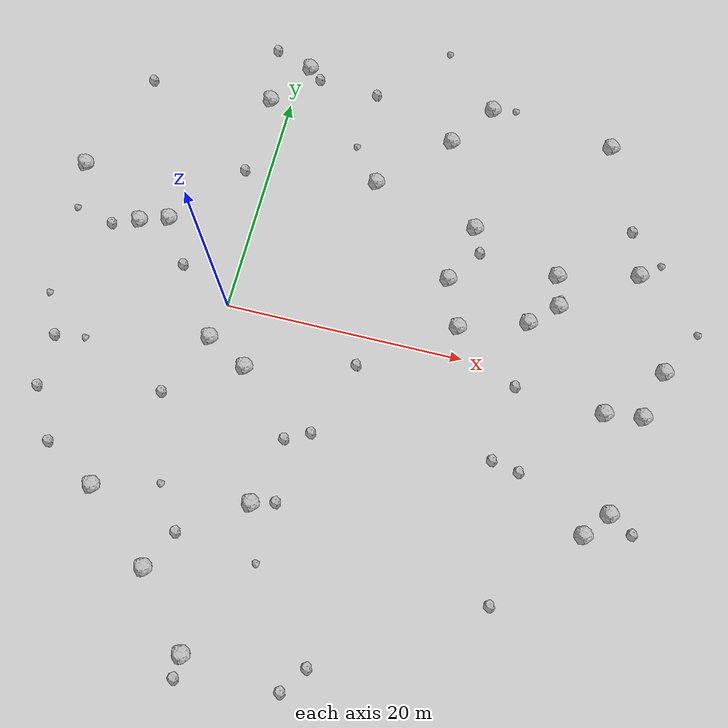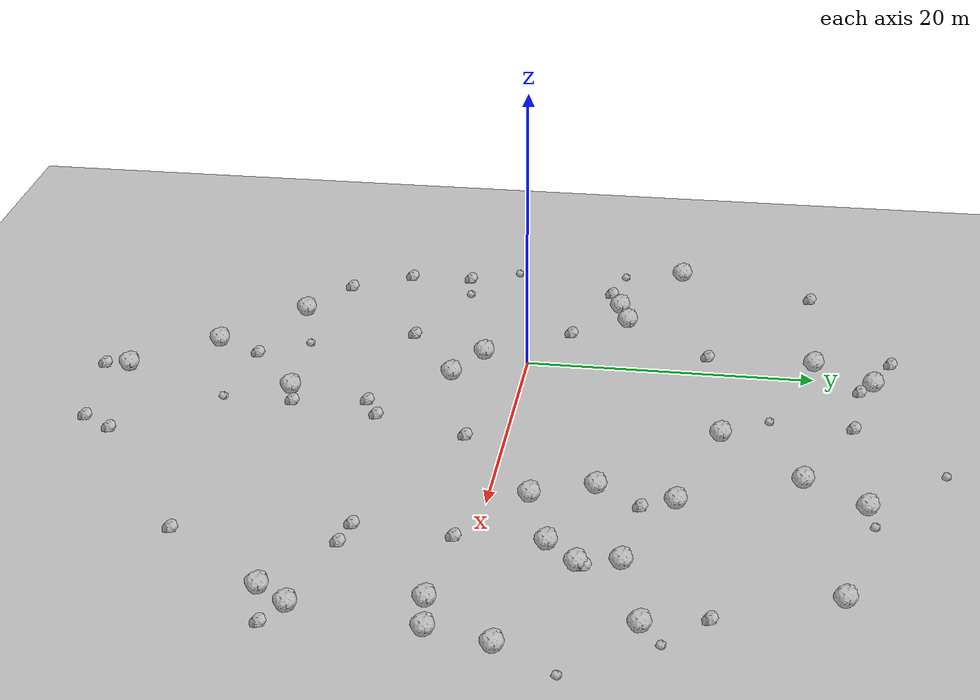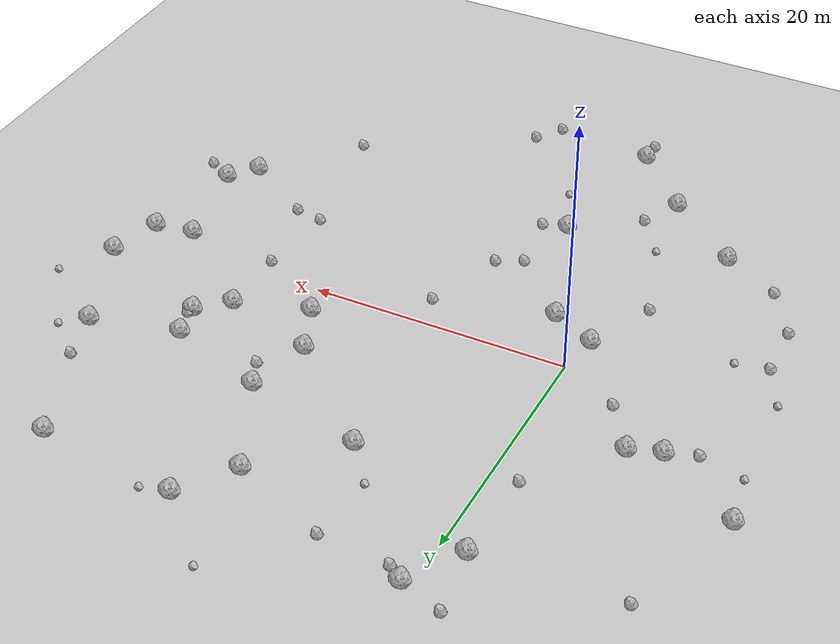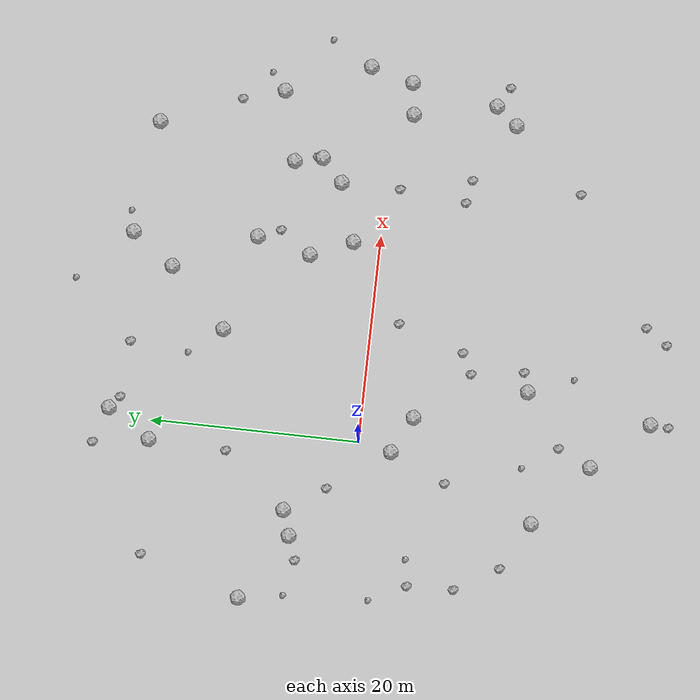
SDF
<sdf version="1.6">
 <world name="default">
  <include><uri>model://custom_ground</uri></include>
  <include><uri>model://sun</uri></include>
  <model name="rock1_0_0">
   <include><uri>model://rock1</uri><pose>-9.551726560826815 5.658364170545845 0.5 0 0 0</pose></include>
  </model>
  <model name="rock1_0_1">
   <include><uri>model://rock1</uri><pose>6.525494328169753 -15.528129669238202 0.5 0 0 0</pose></include>
  </model>
  <model name="rock1_0_2">
   <include><uri>model://rock1</uri><pose>14.978238811556729 19.59930031675478 0.5 0 0 0</pose></include>
  </model>
  <model name="rock1_0_3">
   <include><uri>model://rock1</uri><pose>35.173844090567314 -1.4398469227814665 0.5 0 0 0</pose></include>
  </model>
  <model name="rock1_0_4">
   <include><uri>model://rock1</uri><pose>17.903144709683914 23.66732824782293 0.5 0 0 0</pose></include>
  </model>
  <model name="rock1_0_5">
   <include><uri>model://rock1</uri><pose>4.657105373161706 -27.478541318918516 0.5 0 0 0</pose></include>
  </model>
  <model name="rock1_0_6">
   <include><uri>model://rock1</uri><pose>24.757668048360884 4.340254648814792 0.5 0 0 0</pose></include>
  </model>
  <model name="rock1_0_7">
   <include><uri>model://rock1</uri><pose>-5.961700583877445 -17.111554562166315 0.5 0 0 0</pose></include>
  </model>
  <model name="rock1_0_8">
   <include><uri>model://rock1</uri><pose>32.09557068831104 -1.8662773400095176 0.5 0 0 0</pose></include>
  </model>
  <model name="rock1_0_9">
   <include><uri>model://rock1</uri><pose>28.84026890550205 22.363350226917788 0.5 0 0 0</pose></include>
  </model>
  <model name="rock1_0_10">
   <include><uri>model://rock1</uri><pose>32.05394939986874 -11.825418559368089 0.5 0 0 0</pose></include>
  </model>
  <model name="rock1_0_11">
   <include><uri>model://rock1</uri><pose>18.7097731202906 11.778567993993775 0.5 0 0 0</pose></include>
  </model>
  <model name="rock1_0_12">
   <include><uri>model://rock1</uri><pose>-15.896420309960842 9.810015975268527 0.5 0 0 0</pose></include>
  </model>
  <model name="rock1_0_13">
   <include><uri>model://rock1</uri><pose>9.434874660676662 14.064862368814445 0.5 0 0 0</pose></include>
  </model>
  <model name="rock1_0_14">
   <include><uri>model://rock1</uri><pose>-0.02960096387186084 -22.165018221034458 0.5 0 0 0</pose></include>
  </model>
  <model name="rock1_0_15">
   <include><uri>model://rock1</uri><pose>33.09887189784094 10.725748791118697 0.5 0 0 0</pose></include>
  </model>
  <model name="rock1_0_16">
   <include><uri>model://rock1</uri><pose>2.933327695562589 -4.941073363136727 0.5 0 0 0</pose></include>
  </model>
  <model name="rock1_0_17">
   <include><uri>model://rock1</uri><pose>26.369798298200188 9.057177148235965 0.5 0 0 0</pose></include>
  </model>
  <model name="rock1_0_18">
   <include><uri>model://rock1</uri><pose>19.15200294798973 2.5899990601920706 0.5 0 0 0</pose></include>
  </model>
  <model name="rock1_0_19">
   <include><uri>model://rock1</uri><pose>26.951856075820388 6.385992832944176 0.5 0 0 0</pose></include>
  </model>
  <model name="rock1_0_20">
   <include><uri>model://rock1</uri><pose>0.7873363466603003 24.07229664766971 0.5 0 0 0</pose></include>
  </model>
  <model name="rock1_0_21">
   <include><uri>model://rock1</uri><pose>-0.5725116038871612 -3.1469100808864177 0.5 0 0 0</pose></include>
  </model>
  <model name="rock1_0_22">
   <include><uri>model://rock1</uri><pose>36.31542387867218 2.6972559976155424 0.5 0 0 0</pose></include>
  </model>
  <model name="rock1_0_23">
   <include><uri>model://rock1</uri><pose>-7.152741680136149 6.438192470695547 0.5 0 0 0</pose></include>
  </model>
  <model name="rock1_0_24">
   <include><uri>model://rock1</uri><pose>33.75240878094792 -9.752561160526604 0.5 0 0 0</pose></include>
  </model>
  <model name="rock1_0_25">
   <include><uri>model://rock1</uri><pose>-1.8262302441712137 19.959202153039342 0.5 0 0 0</pose></include>
  </model>
  <model name="rock1_0_26">
   <include><uri>model://rock1</uri><pose>17.466065402417648 6.623176181134468 0.5 0 0 0</pose></include>
  </model>
  <model name="rock2_0_0">
   <include><uri>model://rock2</uri><pose>-2.1076209854782633 12.545652631384016 0.3 0 0 0</pose></include>
  </model>
  <model name="rock2_0_1">
   <include><uri>model://rock2</uri><pose>-12.767681102007112 19.478969545818238 0.3 0 0 0</pose></include>
  </model>
  <model name="rock2_0_2">
   <include><uri>model://rock2</uri><pose>4.556087843798082 -29.213374631738358 0.3 0 0 0</pose></include>
  </model>
  <model name="rock2_0_3">
   <include><uri>model://rock2</uri><pose>7.3598117831130345 22.791673015682278 0.3 0 0 0</pose></include>
  </model>
  <model name="rock2_0_4">
   <include><uri>model://rock2</uri><pose>26.319278064421226 -8.161043997304347 0.3 0 0 0</pose></include>
  </model>
  <model name="rock2_0_5">
   <include><uri>model://rock2</uri><pose>9.611140949476141 -8.977769120030633 0.3 0 0 0</pose></include>
  </model>
  <model name="rock2_0_6">
   <include><uri>model://rock2</uri><pose>26.07126488731342 -18.678094918892505 0.3 0 0 0</pose></include>
  </model>
  <model name="rock2_0_7">
   <include><uri>model://rock2</uri><pose>-12.988371466282594 -10.424023336573804 0.3 0 0 0</pose></include>
  </model>
  <model name="rock2_0_8">
   <include><uri>model://rock2</uri><pose>8.370936616293509 -14.998560017986923 0.3 0 0 0</pose></include>
  </model>
  <model name="rock2_0_9">
   <include><uri>model://rock2</uri><pose>27.040090203728525 6.8873130443278185 0.3 0 0 0</pose></include>
  </model>
  <model name="rock2_0_10">
   <include><uri>model://rock2</uri><pose>24.083539014647627 -7.7410710448314966 0.3 0 0 0</pose></include>
  </model>
  <model name="rock2_0_11">
   <include><uri>model://rock2</uri><pose>11.75579595320636 -2.601002839735248 0.3 0 0 0</pose></include>
  </model>
  <model name="rock2_0_12">
   <include><uri>model://rock2</uri><pose>13.886342731963971 -26.20481341159381 0.3 0 0 0</pose></include>
  </model>
  <model name="rock2_0_13">
   <include><uri>model://rock2</uri><pose>-13.11695526625639 -5.973105190903468 0.3 0 0 0</pose></include>
  </model>
  <model name="rock2_0_14">
   <include><uri>model://rock2</uri><pose>31.917226511826918 14.69716209436087 0.3 0 0 0</pose></include>
  </model>
  <model name="rock2_0_15">
   <include><uri>model://rock2</uri><pose>-10.525159330953382 -14.584941271871251 0.3 0 0 0</pose></include>
  </model>
  <model name="rock2_0_16">
   <include><uri>model://rock2</uri><pose>-4.683761400695573 2.6118200227654853 0.3 0 0 0</pose></include>
  </model>
  <model name="rock2_0_17">
   <include><uri>model://rock2</uri><pose>12.411701760987732 -28.290305317013708 0.3 0 0 0</pose></include>
  </model>
  <model name="rock2_0_18">
   <include><uri>model://rock2</uri><pose>-2.6362068851392024 25.287541088376116 0.3 0 0 0</pose></include>
  </model>
  <model name="rock2_0_19">
   <include><uri>model://rock2</uri><pose>19.571530732457212 9.632664131395835 0.3 0 0 0</pose></include>
  </model>
  <model name="rock2_0_20">
   <include><uri>model://rock2</uri><pose>7.658739192554798 -9.954902807704599 0.3 0 0 0</pose></include>
  </model>
  <model name="rock2_0_21">
   <include><uri>model://rock2</uri><pose>-11.826903979004372 4.853959233063065 0.3 0 0 0</pose></include>
  </model>
  <model name="rock2_0_22">
   <include><uri>model://rock2</uri><pose>1.4740446867495223 -19.00852634217297 0.3 0 0 0</pose></include>
  </model>
  <model name="rock2_0_23">
   <include><uri>model://rock2</uri><pose>1.9414424661179481 23.159034099023152 0.3 0 0 0</pose></include>
  </model>
  <model name="rock2_0_24">
   <include><uri>model://rock2</uri><pose>24.72394510151996 -1.318942919640996 0.3 0 0 0</pose></include>
  </model>
  <model name="rock2_0_25">
   <include><uri>model://rock2</uri><pose>-3.033040224024621 -8.527124351589567 0.3 0 0 0</pose></include>
  </model>
  <model name="rock2_0_26">
   <include><uri>model://rock2</uri><pose>35.697816363103854 -10.879739896210367 0.3 0 0 0</pose></include>
  </model>
  <model name="rock3_0_0">
   <include><uri>model://rock3</uri><pose>6.857569436498586 17.186086094452627 0.2 0 0 0</pose></include>
  </model>
  <model name="rock3_0_1">
   <include><uri>model://rock3</uri><pose>-0.8072237528325452 -15.710096379560248 0.2 0 0 0</pose></include>
  </model>
  <model name="rock3_0_2">
   <include><uri>model://rock3</uri><pose>-15.261874115451937 5.598008568532457 0.2 0 0 0</pose></include>
  </model>
  <model name="rock3_0_3">
   <include><uri>model://rock3</uri><pose>19.930850184135203 24.109246118672388 0.2 0 0 0</pose></include>
  </model>
  <model name="rock3_0_4">
   <include><uri>model://rock3</uri><pose>38.56439440033748 6.610501055208907 0.2 0 0 0</pose></include>
  </model>
  <model name="rock3_0_5">
   <include><uri>model://rock3</uri><pose>8.139352126609097 -19.862201073627894 0.2 0 0 0</pose></include>
  </model>
  <model name="rock3_0_6">
   <include><uri>model://rock3</uri><pose>-14.862051675257932 -2.4933888170265988 0.2 0 0 0</pose></include>
  </model>
  <model name="rock3_0_7">
   <include><uri>model://rock3</uri><pose>34.77491705332481 12.082652091160583 0.2 0 0 0</pose></include>
  </model>
  <model name="rock3_0_8">
   <include><uri>model://rock3</uri><pose>12.883758954142358 28.661326973318253 0.2 0 0 0</pose></include>
  </model>
  <model name="rock3_0_9">
   <include><uri>model://rock3</uri><pose>-10.625580920443117 -5.611362273261538 0.2 0 0 0</pose></include>
  </model>
 </world>
</sdf>
